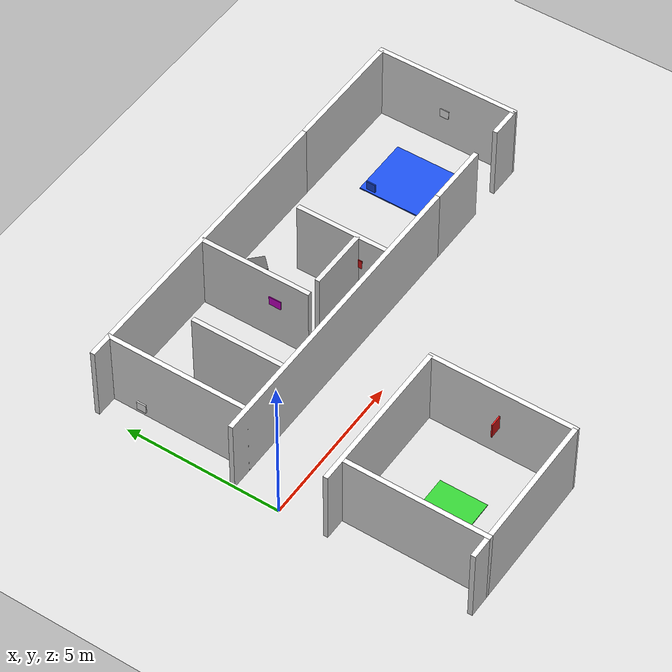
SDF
<sdf version="1.6">
 <world name="hospital_world">
  <model name="ground_plane">
   <static>true</static>
   <link name="link">
    <collision name="collision">
     <geometry><plane><normal>0 0 1</normal><size>60 40</size></plane></geometry>
    </collision>
    <visual name="visual">
     <geometry><plane><normal>0 0 1</normal><size>60 40</size></plane></geometry>
     <material><ambient>0.85 0.85 0.85 1</ambient><diffuse>0.85 0.85 0.85 1</diffuse></material>
    </visual>
   </link>
  </model>
  <model name="intersect_wall_east_south">
   <static>true</static>
   <pose>0.75 -3.75 1.25 0 0 0</pose>
   <link name="link">
    <collision name="c"><geometry><box><size>0.15 4.65 2.5</size></box></geometry></collision>
    <visual name="v">
     <geometry><box><size>0.15 4.65 2.5</size></box></geometry>
     <material><ambient>0.95 0.95 0.95 1</ambient><diffuse>0.95 0.95 0.95 1</diffuse></material>
    </visual>
   </link>
  </model>
  <model name="intersect_wall_east_north">
   <static>true</static>
   <pose>0.75 3.75 1.25 0 0 0</pose>
   <link name="link">
    <collision name="c"><geometry><box><size>0.15 4.65 2.5</size></box></geometry></collision>
    <visual name="v">
     <geometry><box><size>0.15 4.65 2.5</size></box></geometry>
     <material><ambient>0.95 0.95 0.95 1</ambient><diffuse>0.95 0.95 0.95 1</diffuse></material>
    </visual>
   </link>
  </model>
  <model name="false_goal_wall_south">
   <static>true</static>
   <pose>2.5 -6 1.25 0 0 0</pose>
   <link name="link">
    <collision name="c"><geometry><box><size>5 0.15 2.5</size></box></geometry></collision>
    <visual name="v">
     <geometry><box><size>5 0.15 2.5</size></box></geometry>
     <material><ambient>0.95 0.95 0.95 1</ambient><diffuse>0.95 0.95 0.95 1</diffuse></material>
    </visual>
   </link>
  </model>
  <model name="false_goal_wall_east">
   <static>true</static>
   <pose>5 -3.75 1.25 0 0 0</pose>
   <link name="link">
    <collision name="c"><geometry><box><size>0.15 4.65 2.5</size></box></geometry></collision>
    <visual name="v">
     <geometry><box><size>0.15 4.65 2.5</size></box></geometry>
     <material><ambient>0.95 0.95 0.95 1</ambient><diffuse>0.95 0.95 0.95 1</diffuse></material>
    </visual>
   </link>
  </model>
  <model name="false_goal_wall_north">
   <static>true</static>
   <pose>2.5 -1.5 1.25 0 0 0</pose>
   <link name="link">
    <collision name="c"><geometry><box><size>5 0.15 2.5</size></box></geometry></collision>
    <visual name="v">
     <geometry><box><size>5 0.15 2.5</size></box></geometry>
     <material><ambient>0.95 0.95 0.95 1</ambient><diffuse>0.95 0.95 0.95 1</diffuse></material>
    </visual>
   </link>
  </model>
  <model name="false_goal_marker">
   <static>true</static>
   <pose>2.5 -3.75 0.02 0 0 0</pose>
   <link name="link">
    <visual name="v">
     <geometry><box><size>1.5 1.5 0.04</size></box></geometry>
     <material><ambient>0.2 0.8 0.2 1</ambient><diffuse>0.2 0.8 0.2 1</diffuse></material>
    </visual>
   </link>
  </model>
  <model name="false_goal_sign">
   <static>true</static>
   <pose>4.8 -3.75 1.3 0 0 1.5708</pose>
   <link name="link">
    <collision name="c"><geometry><box><size>0.04 0.5 0.5</size></box></geometry></collision>
    <visual name="v">
     <geometry><box><size>0.04 0.5 0.5</size></box></geometry>
     <material><ambient>0.9 0.1 0.1 1</ambient><diffuse>0.9 0.1 0.1 1</diffuse></material>
    </visual>
   </link>
  </model>
  <model name="maze_wall_north">
   <static>true</static>
   <pose>5 6 1.25 0 0 0</pose>
   <link name="link">
    <collision name="c"><geometry><box><size>10 0.15 2.5</size></box></geometry></collision>
    <visual name="v">
     <geometry><box><size>10 0.15 2.5</size></box></geometry>
     <material><ambient>0.95 0.95 0.95 1</ambient><diffuse>0.95 0.95 0.95 1</diffuse></material>
    </visual>
   </link>
  </model>
  <model name="maze_wall_south">
   <static>true</static>
   <pose>5 1.5 1.25 0 0 0</pose>
   <link name="link">
    <collision name="c"><geometry><box><size>10 0.15 2.5</size></box></geometry></collision>
    <visual name="v">
     <geometry><box><size>10 0.15 2.5</size></box></geometry>
     <material><ambient>0.95 0.95 0.95 1</ambient><diffuse>0.95 0.95 0.95 1</diffuse></material>
    </visual>
   </link>
  </model>
  <model name="maze_baffle_1">
   <static>true</static>
   <pose>2.5 3.0 1.25 0 0 0</pose>
   <link name="link">
    <collision name="c"><geometry><box><size>0.15 3.0 2.5</size></box></geometry></collision>
    <visual name="v">
     <geometry><box><size>0.15 3.0 2.5</size></box></geometry>
     <material><ambient>0.9 0.9 0.9 1</ambient><diffuse>0.9 0.9 0.9 1</diffuse></material>
    </visual>
   </link>
  </model>
  <model name="maze_baffle_2">
   <static>true</static>
   <pose>5 4.2 1.25 0 0 0</pose>
   <link name="link">
    <collision name="c"><geometry><box><size>0.15 3.6 2.5</size></box></geometry></collision>
    <visual name="v">
     <geometry><box><size>0.15 3.6 2.5</size></box></geometry>
     <material><ambient>0.9 0.9 0.9 1</ambient><diffuse>0.9 0.9 0.9 1</diffuse></material>
    </visual>
   </link>
  </model>
  <model name="maze_baffle_3">
   <static>true</static>
   <pose>7.5 3.0 1.25 0 0 0</pose>
   <link name="link">
    <collision name="c"><geometry><box><size>0.15 3.0 2.5</size></box></geometry></collision>
    <visual name="v">
     <geometry><box><size>0.15 3.0 2.5</size></box></geometry>
     <material><ambient>0.9 0.9 0.9 1</ambient><diffuse>0.9 0.9 0.9 1</diffuse></material>
    </visual>
   </link>
  </model>
  <model name="maze_baffle_4">
   <static>true</static>
   <pose>6.5 2.5 1.25 0 0 1.5708</pose>
   <link name="link">
    <collision name="c"><geometry><box><size>0.15 2.0 2.5</size></box></geometry></collision>
    <visual name="v">
     <geometry><box><size>0.15 2.0 2.5</size></box></geometry>
     <material><ambient>0.9 0.9 0.9 1</ambient><diffuse>0.9 0.9 0.9 1</diffuse></material>
    </visual>
   </link>
  </model>
  <model name="goal_wall_north">
   <static>true</static>
   <pose>12 6 1.25 0 0 0</pose>
   <link name="link">
    <collision name="c"><geometry><box><size>4 0.15 2.5</size></box></geometry></collision>
    <visual name="v">
     <geometry><box><size>4 0.15 2.5</size></box></geometry>
     <material><ambient>0.95 0.95 0.95 1</ambient><diffuse>0.95 0.95 0.95 1</diffuse></material>
    </visual>
   </link>
  </model>
  <model name="goal_wall_east">
   <static>true</static>
   <pose>14 3.75 1.25 0 0 0</pose>
   <link name="link">
    <collision name="c"><geometry><box><size>0.15 4.65 2.5</size></box></geometry></collision>
    <visual name="v">
     <geometry><box><size>0.15 4.65 2.5</size></box></geometry>
     <material><ambient>0.95 0.95 0.95 1</ambient><diffuse>0.95 0.95 0.95 1</diffuse></material>
    </visual>
   </link>
  </model>
  <model name="goal_wall_south_1">
   <static>true</static>
   <pose>11 1.5 1.25 0 0 0</pose>
   <link name="link">
    <collision name="c"><geometry><box><size>2.0 0.15 2.5</size></box></geometry></collision>
    <visual name="v">
     <geometry><box><size>2.0 0.15 2.5</size></box></geometry>
     <material><ambient>0.95 0.95 0.95 1</ambient><diffuse>0.95 0.95 0.95 1</diffuse></material>
    </visual>
   </link>
  </model>
  <model name="goal_wall_south_2">
   <static>true</static>
   <pose>13.5 1.5 1.25 0 0 0</pose>
   <link name="link">
    <collision name="c"><geometry><box><size>1.0 0.15 2.5</size></box></geometry></collision>
    <visual name="v">
     <geometry><box><size>1.0 0.15 2.5</size></box></geometry>
     <material><ambient>0.95 0.95 0.95 1</ambient><diffuse>0.95 0.95 0.95 1</diffuse></material>
    </visual>
   </link>
  </model>
  <model name="true_goal_marker">
   <static>true</static>
   <pose>12 3.75 0.02 0 0 0</pose>
   <link name="link">
    <visual name="v">
     <geometry><box><size>2.0 2.0 0.04</size></box></geometry>
     <material><ambient>0.1 0.3 0.9 1</ambient><diffuse>0.1 0.3 0.9 1</diffuse></material>
    </visual>
   </link>
  </model>
  <model name="aruco_marker_2">
   <static>true</static>
   <pose>0.08 4.5 1.2 0 0 0</pose>
   <link name="link">
    <collision name="c"><geometry><box><size>0.04 0.3 0.3</size></box></geometry></collision>
    <visual name="v">
     <geometry><box><size>0.04 0.3 0.3</size></box></geometry>
     <material><ambient>1 1 1 1</ambient><diffuse>1 1 1 1</diffuse></material>
    </visual>
   </link>
  </model>
  <model name="aruco_marker_3">
   <static>true</static>
   <pose>13.92 3.75 1.2 0 0 0</pose>
   <link name="link">
    <collision name="c"><geometry><box><size>0.04 0.3 0.3</size></box></geometry></collision>
    <visual name="v">
     <geometry><box><size>0.04 0.3 0.3</size></box></geometry>
     <material><ambient>1 1 1 1</ambient><diffuse>1 1 1 1</diffuse></material>
    </visual>
   </link>
  </model>
  <model name="sign_left">
   <static>true</static>
   <pose>0.72 5.0 1.5 0 0 0</pose>
   <link name="link">
    <collision name="c"><geometry><box><size>0.04 0.4 0.3</size></box></geometry></collision>
    <visual name="v">
     <geometry><box><size>0.04 0.4 0.3</size></box></geometry>
     <material><ambient>0.9 0.85 0.0 1</ambient><diffuse>0.9 0.85 0.0 1</diffuse></material>
    </visual>
   </link>
  </model>
  <model name="sign_right_misleading">
   <static>true</static>
   <pose>0.72 -2.5 1.5 0 0 0</pose>
   <link name="link">
    <collision name="c"><geometry><box><size>0.04 0.4 0.3</size></box></geometry></collision>
    <visual name="v">
     <geometry><box><size>0.04 0.4 0.3</size></box></geometry>
     <material><ambient>0.95 0.5 0.0 1</ambient><diffuse>0.95 0.5 0.0 1</diffuse></material>
    </visual>
   </link>
  </model>
  <model name="sign_inplace_rotation">
   <static>true</static>
   <pose>4.92 3.5 1.5 0 0 0</pose>
   <link name="link">
    <collision name="c"><geometry><box><size>0.04 0.4 0.3</size></box></geometry></collision>
    <visual name="v">
     <geometry><box><size>0.04 0.4 0.3</size></box></geometry>
     <material><ambient>0.85 0.0 0.85 1</ambient><diffuse>0.85 0.0 0.85 1</diffuse></material>
    </visual>
   </link>
  </model>
  <model name="sign_stop">
   <static>true</static>
   <pose>7.42 2.5 1.5 0 0 0</pose>
   <link name="link">
    <collision name="c"><geometry><box><size>0.04 0.4 0.3</size></box></geometry></collision>
    <visual name="v">
     <geometry><box><size>0.04 0.4 0.3</size></box></geometry>
     <material><ambient>0.9 0.1 0.1 1</ambient><diffuse>0.9 0.1 0.1 1</diffuse></material>
    </visual>
   </link>
  </model>
  <model name="sign_goal">
   <static>true</static>
   <pose>10.05 3.75 1.5 0 0 0</pose>
   <link name="link">
    <collision name="c"><geometry><box><size>0.04 0.4 0.3</size></box></geometry></collision>
    <visual name="v">
     <geometry><box><size>0.04 0.3 0.3</size></box></geometry>
     <material><ambient>0.1 0.3 0.9 1</ambient><diffuse>0.1 0.3 0.9 1</diffuse></material>
    </visual>
   </link>
  </model>
  <model name="maze_box_obs_1">
   <static>true</static>
   <pose>3.5 4.8 0.3 0 0 0.4</pose>
   <link name="link">
    <collision name="c"><geometry><box><size>0.5 0.5 0.6</size></box></geometry></collision>
    <visual name="v">
     <geometry><box><size>0.5 0.5 0.6</size></box></geometry>
     <material><ambient>0.4 0.4 0.4 1</ambient><diffuse>0.4 0.4 0.4 1</diffuse></material>
    </visual>
   </link>
  </model>
  <model name="maze_box_obs_2">
   <static>true</static>
   <pose>6.5 5.2 0.3 0 0 0.8</pose>
   <link name="link">
    <collision name="c"><geometry><box><size>0.5 0.5 0.6</size></box></geometry></collision>
    <visual name="v">
     <geometry><box><size>0.5 0.5 0.6</size></box></geometry>
     <material><ambient>0.4 0.4 0.4 1</ambient><diffuse>0.4 0.4 0.4 1</diffuse></material>
    </visual>
   </link>
  </model>
 </world>
</sdf>
